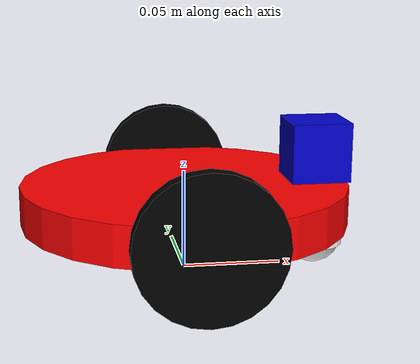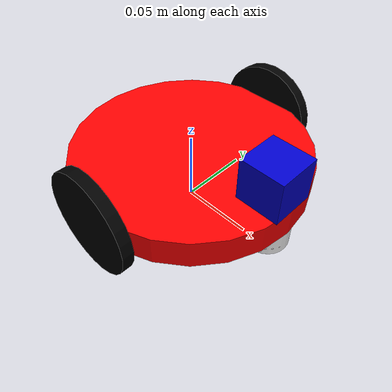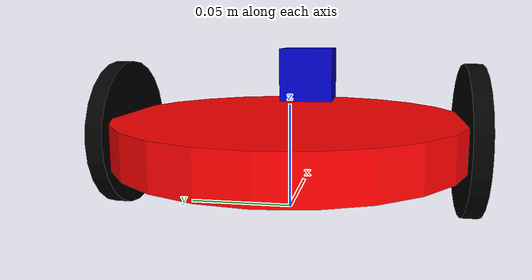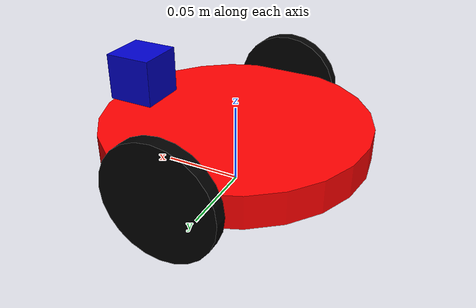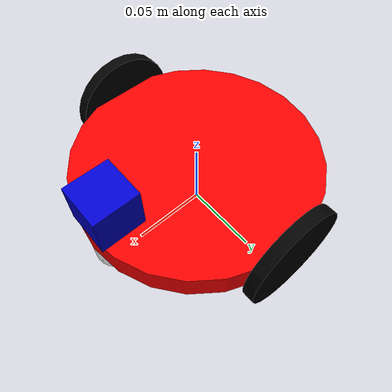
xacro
<?xml version="1.0"?>
<robot name="my_robot" xmlns:xacro="http://ros.org/wiki/xacro">

  <xacro:property name="baserad" value="0.0825" />
  <xacro:property name="baselen" value="0.02" />
  <xacro:property name="wheelrad" value="0.035" />
  <xacro:property name="wheelwidth" value="0.008" />
  <xacro:property name="headwidth" value="0.03" />

  <material name="blue">
    <color rgba="0 0 0.8 1"/>
  </material>

  <material name="black">
    <color rgba="0 0 0 1"/>
  </material>

  <material name="white">
    <color rgba="1 1 1 1"/>
  </material>

  <material name="red">
    <color rgba="1 0 0 1"/>
  </material>

  <xacro:macro name="default_inertial" params="mass">
    <inertial>
      <mass value="${mass}" />
      <inertia ixx="1.0" ixy="0.0" ixz="0.0" iyy="1.0" iyz="0.0" izz="1.0" />
    </inertial>
  </xacro:macro>

  <link name="base_link">
    <visual>
      <geometry>
        <cylinder length="${baselen}" radius="${baserad}"/>
      </geometry>
      <material name="red"/>
    </visual>
    <collision>
      <geometry>
        <cylinder length="${baselen}" radius="${baserad}"/>
      </geometry>
    </collision>
    <inertial>
      <mass value="0.1"/>
      <inertia ixx="0.00017" ixy="0.0" ixz="0.0" iyy="0.00017" iyz="0.0" izz="0.00034"/>
   </inertial>
  </link>

 <xacro:macro name="wheel" params="prefix reflect">

  <link name="${prefix}_wheel">
    <visual>
      <geometry>
        <cylinder length="${wheelwidth}" radius="${wheelrad}"/>
      </geometry>
      <material name="black"/>
      <origin rpy="${pi/2} 0 0" xyz="0 0 0"/>
    </visual>
    <collision>
      <geometry>
        <cylinder length="${wheelwidth}" radius="${wheelrad}"/>
      </geometry>
      <origin rpy="${pi/2} 0 0" xyz="0 0 0"/>
    </collision>
    <inertial>
      <mass value="0.015"/>
      <inertia ixx="0.0000092" ixy="0.0" ixz="0.0" iyy="0.0000047" iyz="0.0" izz="0.0000047"/>
   </inertial>
  </link>

  <joint name="base_to_${prefix}_wheel" type="continuous">
    <parent link="base_link"/>
    <child link="${prefix}_wheel"/>
    <axis xyz="0 1 0"/>
    <origin xyz="0 ${reflect*baserad} 0"/>
  </joint>

 </xacro:macro>

  <xacro:wheel prefix="left" reflect="1" />
  <xacro:wheel prefix="right" reflect="-1" />

  <link name="head">
    <visual>
      <geometry>
        <box size="${headwidth} ${headwidth} ${headwidth}"/>
      </geometry>
      <material name="blue"/>
      <origin xyz="${headwidth/2} 0 ${headwidth/2}"/>
    </visual>
    <collision>
      <geometry>
        <box size="${headwidth} ${headwidth} ${headwidth}"/>
      </geometry>
      <origin xyz="${headwidth/2} 0 ${headwidth/2}"/>
    </collision>
    <inertial>
      <mass value="0.02"/>
      <inertia ixx="0.000003" ixy="0.0" ixz="0.0" iyy="0.000003" iyz="0.0" izz="0.000003"/>
   </inertial>
  </link>

  <joint name="tohead" type="fixed">
    <parent link="base_link"/>
    <child link="head"/>
    <origin xyz="${baserad-headwidth} 0 ${0.5*baselen}"/>
  </joint>

  <link name="passive_wheel_holder">
    <visual>
      <geometry>
        <cylinder length="${wheelrad-headwidth/2}" radius="${0.5*headwidth}"/>
      </geometry>
      <material name="white"/>
      <origin rpy="0 0 0" xyz="0 0 -${headwidth/2}" />
    </visual>
    <collision>
      <geometry>
        <cylinder length="${wheelrad-headwidth/2}" radius="${wheelrad/2-headwidth/4}"/>
      </geometry>
      <origin rpy="0 0 0" xyz="0 0 -${headwidth/2}" />
    </collision>
    <inertial>
      <mass value="0.02"/>
      <inertia ixx="0.000003" ixy="0.0" ixz="0.0" iyy="0.000003" iyz="0.0" izz="0.000003"/>
   </inertial>
  </link>

 <joint name="base_to_passive_wheel_holder" type="fixed">
    <parent link="base_link"/>
    <child link="passive_wheel_holder"/>
    <origin xyz="${baserad-headwidth/2} 0 0"/>
  </joint>

  <link name="passive_wheel">
    <visual>
      <geometry>
        <sphere radius="${headwidth/2}"/>
      </geometry>
      <material name="white"/>
      <origin rpy="0 0 0" xyz="0 0 0" />
    </visual>
    <collision>
      <geometry>
        <sphere radius="${headwidth/2}"/>
      </geometry>
      <origin rpy="0 0 0" xyz="0 0 0" />
    </collision>
    <inertial>
      <mass value="0.02"/>
      <inertia ixx="0.000003" ixy="0.0" ixz="0.0" iyy="0.000003" iyz="0.0" izz="0.000003"/>
   </inertial>
  </link>

 <joint name="passive_wheel_holder_to_passive_wheel" type="fixed">
    <parent link="passive_wheel_holder"/>
    <child link="passive_wheel"/>
    <origin xyz="0 0 -${wheelrad-headwidth/2}"/>
  </joint>

<link name="base_footprint">
  </link>

 <joint name="footprinttobase" type="fixed">
    <parent link="base_footprint"/>
    <child link="base_link"/>
    <origin xyz="0 0 ${wheelrad}"/>
  </joint>

</robot>
